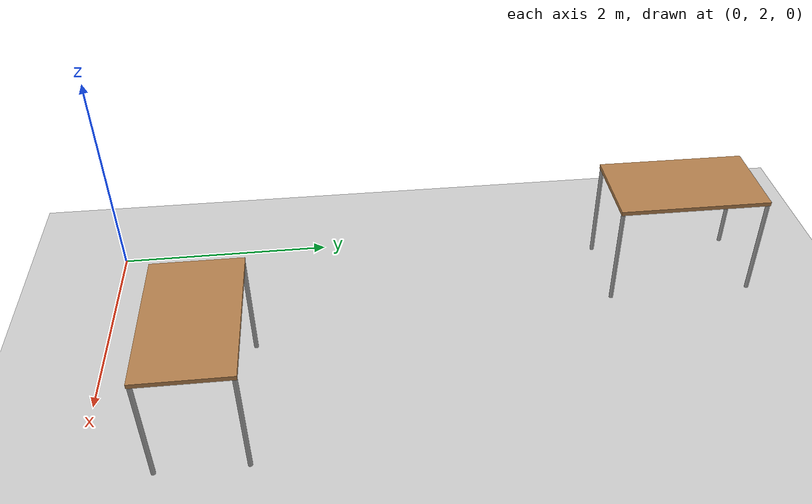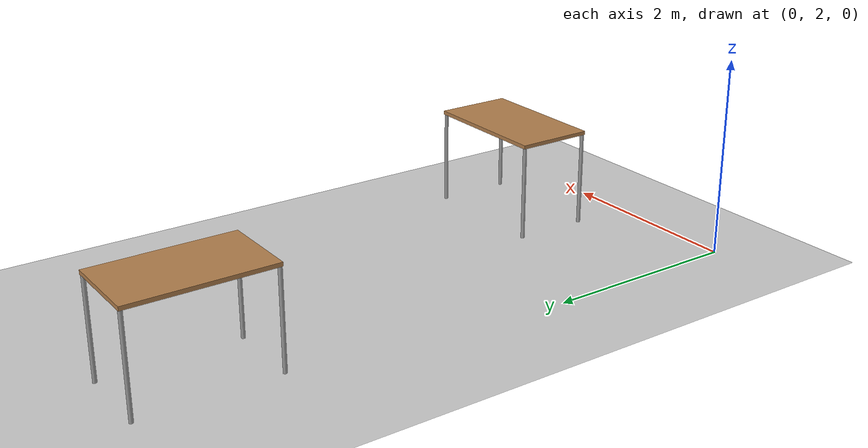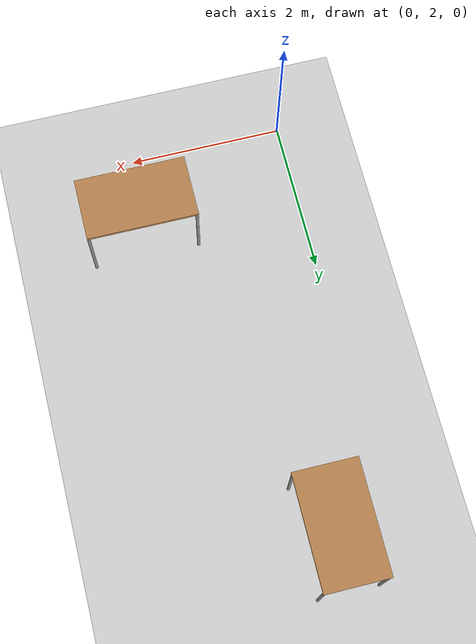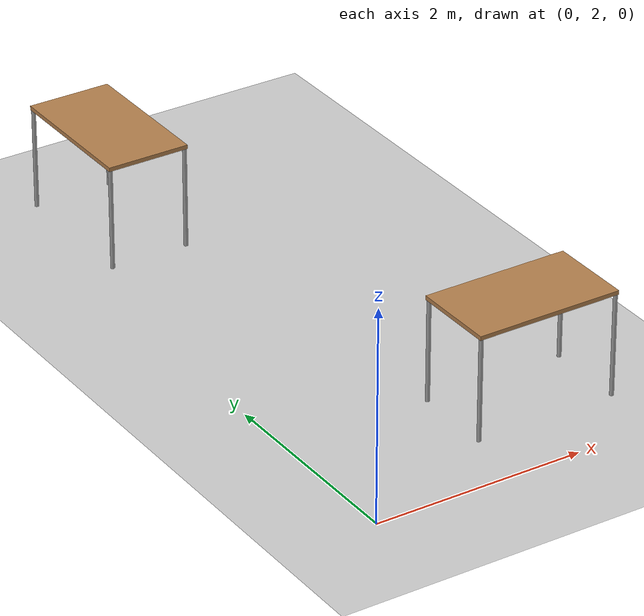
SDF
<sdf version="1.6">
 <world name="default">
  <model name="ground_plane">
   <static>1</static>
   <link name="link">
    <collision name="collision">
     <geometry><plane><normal>0 0 1</normal><size>100 100</size></plane></geometry>
     <surface><friction><ode><mu>100</mu><mu2>50</mu2></ode></friction></surface>
    </collision>
    <visual name="visual">
     <cast_shadows>0</cast_shadows>
     <geometry><plane><normal>0 0 1</normal><size>100 100</size></plane></geometry>
     <material>
      <script><uri>file://media/materials/scripts/gazebo.material</uri><name>Gazebo/Grey</name></script>
     </material>
    </visual>
   </link>
  </model>
  <model name="table_1_clone">
   <static>0</static>
   <link name="link">
    <collision name="surface">
     <pose>0 0 1 0 -0 0</pose>
     <geometry><box><size>1.5 0.8 0.03</size></box></geometry>
     <surface><friction><ode><mu>0.6</mu><mu2>0.6</mu2></ode></friction></surface>
    </collision>
    <visual name="visual1">
     <pose>0 0 1 0 -0 0</pose>
     <geometry><box><size>1.4 0.8 0.04</size></box></geometry>
     <material>
      <script><uri>file://media/materials/scripts/gazebo.material</uri><name>Gazebo/Wood</name></script>
     </material>
    </visual>
    <collision name="front_left_leg">
     <pose>0.68 0.38 0.5 0 -0 0</pose>
     <geometry><cylinder><radius>0.02</radius><length>1</length></cylinder></geometry>
    </collision>
    <visual name="front_left_leg">
     <pose>0.68 0.38 0.5 0 -0 0</pose>
     <geometry><cylinder><radius>0.02</radius><length>1</length></cylinder></geometry>
     <material>
      <script><uri>file://media/materials/scripts/gazebo.material</uri><name>Gazebo/Grey</name></script>
     </material>
    </visual>
    <collision name="front_right_leg">
     <pose>0.68 -0.38 0.5 0 -0 0</pose>
     <geometry><cylinder><radius>0.02</radius><length>1</length></cylinder></geometry>
    </collision>
    <visual name="front_right_leg">
     <pose>0.68 -0.38 0.5 0 -0 0</pose>
     <geometry><cylinder><radius>0.02</radius><length>1</length></cylinder></geometry>
     <material>
      <script><uri>file://media/materials/scripts/gazebo.material</uri><name>Gazebo/Grey</name></script>
     </material>
    </visual>
    <collision name="back_right_leg">
     <pose>-0.68 -0.38 0.5 0 -0 0</pose>
     <geometry><cylinder><radius>0.02</radius><length>1</length></cylinder></geometry>
    </collision>
    <visual name="back_right_leg">
     <pose>-0.68 -0.38 0.5 0 -0 0</pose>
     <geometry><cylinder><radius>0.02</radius><length>1</length></cylinder></geometry>
     <material>
      <script><uri>file://media/materials/scripts/gazebo.material</uri><name>Gazebo/Grey</name></script>
     </material>
    </visual>
    <collision name="back_left_leg">
     <pose>-0.68 0.38 0.5 0 -0 0</pose>
     <geometry><cylinder><radius>0.02</radius><length>1</length></cylinder></geometry>
    </collision>
    <visual name="back_left_leg">
     <pose>-0.68 0.38 0.5 0 -0 0</pose>
     <geometry><cylinder><radius>0.02</radius><length>1</length></cylinder></geometry>
     <material>
      <script><uri>file://media/materials/scripts/gazebo.material</uri><name>Gazebo/Grey</name></script>
     </material>
    </visual>
    <inertial>
     <inertia><ixx>1</ixx><ixy>0</ixy><ixz>0</ixz><iyy>1</iyy><iyz>0</iyz><izz>1</izz></inertia>
     <mass>1</mass>
    </inertial>
   </link>
   <pose>2.08902 2.97386 -1e-06 0 1e-06 0</pose>
  </model>
  <model name="table_2_clone">
   <static>0</static>
   <link name="link">
    <collision name="surface">
     <pose>0 0 1 0 -0 0</pose>
     <geometry><box><size>1.5 0.8 0.03</size></box></geometry>
     <surface><friction><ode><mu>0.6</mu><mu2>0.6</mu2></ode></friction></surface>
    </collision>
    <visual name="visual1">
     <pose>0 0 1 0 -0 0</pose>
     <geometry><box><size>1.4 0.8 0.04</size></box></geometry>
     <material>
      <script><uri>file://media/materials/scripts/gazebo.material</uri><name>Gazebo/Wood</name></script>
     </material>
    </visual>
    <collision name="front_left_leg">
     <pose>0.68 0.38 0.5 0 -0 0</pose>
     <geometry><cylinder><radius>0.02</radius><length>1</length></cylinder></geometry>
    </collision>
    <visual name="front_left_leg">
     <pose>0.68 0.38 0.5 0 -0 0</pose>
     <geometry><cylinder><radius>0.02</radius><length>1</length></cylinder></geometry>
     <material>
      <script><uri>file://media/materials/scripts/gazebo.material</uri><name>Gazebo/Grey</name></script>
     </material>
    </visual>
    <collision name="front_right_leg">
     <pose>0.68 -0.38 0.5 0 -0 0</pose>
     <geometry><cylinder><radius>0.02</radius><length>1</length></cylinder></geometry>
    </collision>
    <visual name="front_right_leg">
     <pose>0.68 -0.38 0.5 0 -0 0</pose>
     <geometry><cylinder><radius>0.02</radius><length>1</length></cylinder></geometry>
     <material>
      <script><uri>file://media/materials/scripts/gazebo.material</uri><name>Gazebo/Grey</name></script>
     </material>
    </visual>
    <collision name="back_right_leg">
     <pose>-0.68 -0.38 0.5 0 -0 0</pose>
     <geometry><cylinder><radius>0.02</radius><length>1</length></cylinder></geometry>
    </collision>
    <visual name="back_right_leg">
     <pose>-0.68 -0.38 0.5 0 -0 0</pose>
     <geometry><cylinder><radius>0.02</radius><length>1</length></cylinder></geometry>
     <material>
      <script><uri>file://media/materials/scripts/gazebo.material</uri><name>Gazebo/Grey</name></script>
     </material>
    </visual>
    <collision name="back_left_leg">
     <pose>-0.68 0.38 0.5 0 -0 0</pose>
     <geometry><cylinder><radius>0.02</radius><length>1</length></cylinder></geometry>
    </collision>
    <visual name="back_left_leg">
     <pose>-0.68 0.38 0.5 0 -0 0</pose>
     <geometry><cylinder><radius>0.02</radius><length>1</length></cylinder></geometry>
     <material>
      <script><uri>file://media/materials/scripts/gazebo.material</uri><name>Gazebo/Grey</name></script>
     </material>
    </visual>
    <inertial>
     <inertia><ixx>1</ixx><ixy>0</ixy><ixz>0</ixz><iyy>1</iyy><iyz>0</iyz><izz>1</izz></inertia>
     <mass>1</mass>
    </inertial>
   </link>
   <pose>0.713725 7.42413 -9e-06 0 -2e-06 1.57</pose>
  </model>
 </world>
</sdf>
